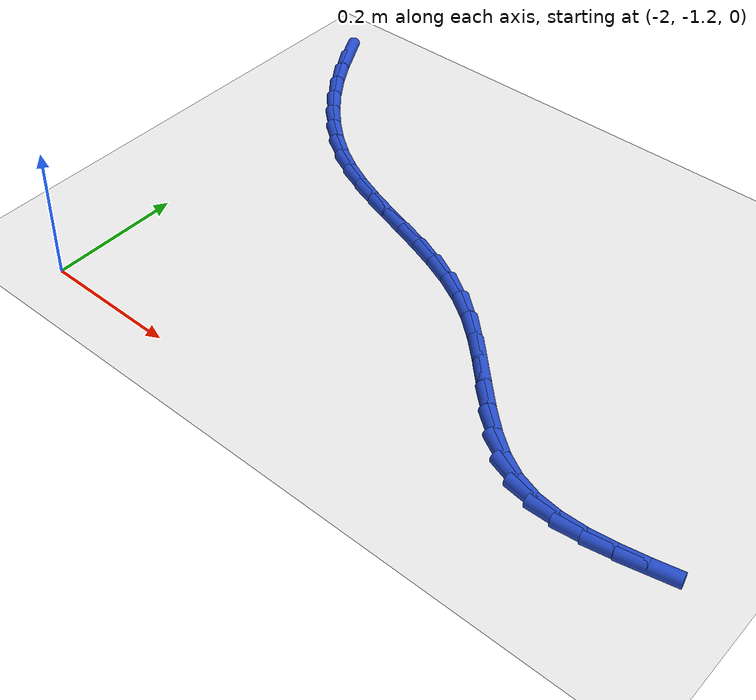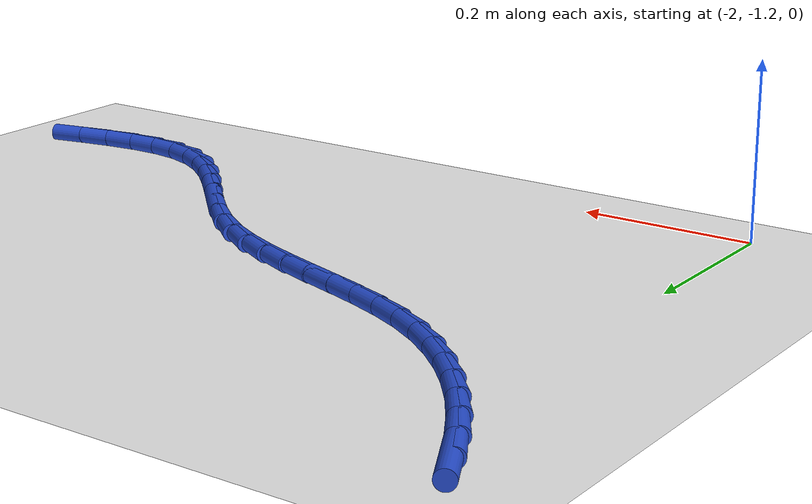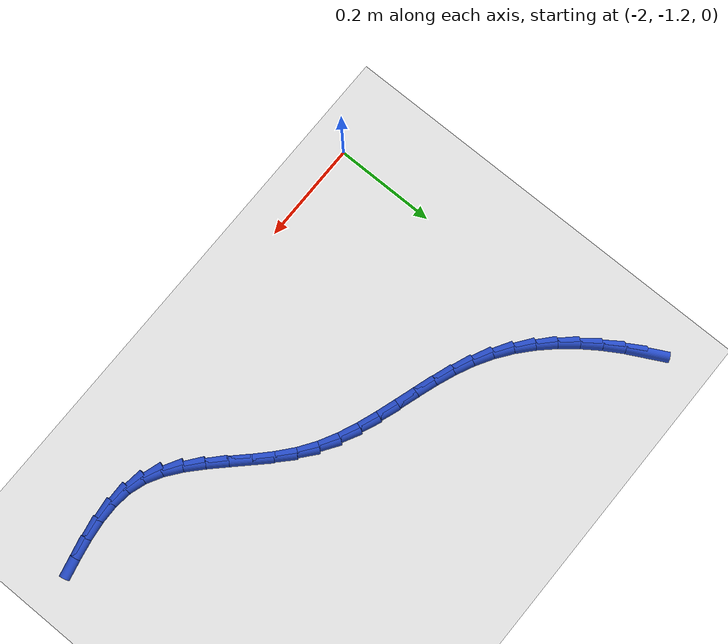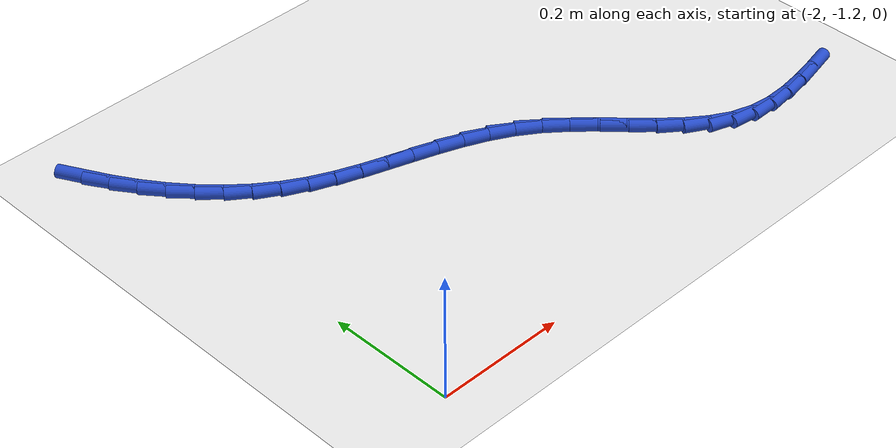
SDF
<sdf version="1.6">
 <world name="default">
  <model name="ground_plane">
   <static>1</static>
   <link name="link">
    <collision name="collision">
     <geometry><plane><normal>0 0 1</normal><size>100 100</size></plane></geometry>
     <surface><friction><ode><mu>100</mu><mu2>50</mu2></ode></friction></surface>
    </collision>
    <visual name="visual">
     <cast_shadows>0</cast_shadows>
     <geometry><plane><normal>0 0 1</normal><size>100 100</size></plane></geometry>
     <material>
      <script><uri>file://media/materials/scripts/gazebo.material</uri><name>Gazebo/WhiteGlow</name></script>
     </material>
    </visual>
   </link>
  </model>
  <model name="line">
   <link name="link_105">
    <pose>-2.055989640583898 -0.5347033518898457 0.01 0 1.57 -1.0903478461457041</pose>
    <collision name="collision">
     <geometry><cylinder><radius>0.01</radius><length>0.08</length></cylinder></geometry>
    </collision>
    <visual name="visual">
     <material>
      <script><name>Gazebo/Blue</name><uri>file://media/materials/scripts/gazebo.material</uri></script>
     </material>
     <geometry><cylinder><radius>0.01</radius><length>0.08</length></cylinder></geometry>
    </visual>
   </link>
   <link name="link_106">
    <pose>-2.036873195884393 -0.571382440824864 0.01 0 1.57 -1.0270769623736873</pose>
    <collision name="collision">
     <geometry><cylinder><radius>0.01</radius><length>0.08</length></cylinder></geometry>
    </collision>
    <visual name="visual">
     <material>
      <script><name>Gazebo/Blue</name><uri>file://media/materials/scripts/gazebo.material</uri></script>
     </material>
     <geometry><cylinder><radius>0.01</radius><length>0.08</length></cylinder></geometry>
    </visual>
   </link>
   <link name="link_107">
    <pose>-2.0156042914344954 -0.6065669227711968 0.01 0 1.57 -0.9596778812503945</pose>
    <collision name="collision">
     <geometry><cylinder><radius>0.01</radius><length>0.08</length></cylinder></geometry>
    </collision>
    <visual name="visual">
     <material>
      <script><name>Gazebo/Blue</name><uri>file://media/materials/scripts/gazebo.material</uri></script>
     </material>
     <geometry><cylinder><radius>0.01</radius><length>0.08</length></cylinder></geometry>
    </visual>
   </link>
   <link name="link_108">
    <pose>-1.99221699327265 -0.6399494524788473 0.01 0 1.57 -0.8872843532348005</pose>
    <collision name="collision">
     <geometry><cylinder><radius>0.01</radius><length>0.08</length></cylinder></geometry>
    </collision>
    <visual name="visual">
     <material>
      <script><name>Gazebo/Blue</name><uri>file://media/materials/scripts/gazebo.material</uri></script>
     </material>
     <geometry><cylinder><radius>0.01</radius><length>0.08</length></cylinder></geometry>
    </visual>
   </link>
   <link name="link_109">
    <pose>-1.9667453674373025 -0.6712226846978193 0.01 0 1.57 -0.8090677057190616</pose>
    <collision name="collision">
     <geometry><cylinder><radius>0.01</radius><length>0.08</length></cylinder></geometry>
    </collision>
    <visual name="visual">
     <material>
      <script><name>Gazebo/Blue</name><uri>file://media/materials/scripts/gazebo.material</uri></script>
     </material>
     <geometry><cylinder><radius>0.01</radius><length>0.08</length></cylinder></geometry>
    </visual>
   </link>
   <link name="link_110">
    <pose>-1.9392234799668995 -0.7000792741781148 0.01 0 1.57 -0.7243023938419302</pose>
    <collision name="collision">
     <geometry><cylinder><radius>0.01</radius><length>0.08</length></cylinder></geometry>
    </collision>
    <visual name="visual">
     <material>
      <script><name>Gazebo/Blue</name><uri>file://media/materials/scripts/gazebo.material</uri></script>
     </material>
     <geometry><cylinder><radius>0.01</radius><length>0.08</length></cylinder></geometry>
    </visual>
   </link>
   <link name="link_111">
    <pose>-1.9096853968998857 -0.7262118756697372 0.01 0 1.57 -0.6324691400189093</pose>
    <collision name="collision">
     <geometry><cylinder><radius>0.01</radius><length>0.08</length></cylinder></geometry>
    </collision>
    <visual name="visual">
     <material>
      <script><name>Gazebo/Blue</name><uri>file://media/materials/scripts/gazebo.material</uri></script>
     </material>
     <geometry><cylinder><radius>0.01</radius><length>0.08</length></cylinder></geometry>
    </visual>
   </link>
   <link name="link_112">
    <pose>-1.8781651842747078 -0.7493131439226903 0.01 0 1.57 -0.5335536478623998</pose>
    <collision name="collision">
     <geometry><cylinder><radius>0.01</radius><length>0.08</length></cylinder></geometry>
    </collision>
    <visual name="visual">
     <material>
      <script><name>Gazebo/Blue</name><uri>file://media/materials/scripts/gazebo.material</uri></script>
     </material>
     <geometry><cylinder><radius>0.01</radius><length>0.08</length></cylinder></geometry>
    </visual>
   </link>
   <link name="link_113">
    <pose>-1.8446989627490256 -0.7690816611771227 0.01 0 1.57 -0.4394246609126795</pose>
    <collision name="collision">
     <geometry><cylinder><radius>0.01</radius><length>0.08</length></cylinder></geometry>
    </collision>
    <visual name="visual">
     <material>
      <script><name>Gazebo/Blue</name><uri>file://media/materials/scripts/gazebo.material</uri></script>
     </material>
     <geometry><cylinder><radius>0.01</radius><length>0.08</length></cylinder></geometry>
    </visual>
   </link>
   <link name="link_114">
    <pose>-1.8094704453236496 -0.785641807384706 0.01 0 1.57 -0.3699642390373073</pose>
    <collision name="collision">
     <geometry><cylinder><radius>0.01</radius><length>0.08</length></cylinder></geometry>
    </collision>
    <visual name="visual">
     <material>
      <script><name>Gazebo/Blue</name><uri>file://media/materials/scripts/gazebo.material</uri></script>
     </material>
     <geometry><cylinder><radius>0.01</radius><length>0.08</length></cylinder></geometry>
    </visual>
   </link>
   <link name="link_115">
    <pose>-1.7729073115763025 -0.79982179582559 0.01 0 1.57 -0.3268279391194134</pose>
    <collision name="collision">
     <geometry><cylinder><radius>0.01</radius><length>0.08</length></cylinder></geometry>
    </collision>
    <visual name="visual">
     <material>
      <script><name>Gazebo/Blue</name><uri>file://media/materials/scripts/gazebo.material</uri></script>
     </material>
     <geometry><cylinder><radius>0.01</radius><length>0.08</length></cylinder></geometry>
    </visual>
   </link>
   <link name="link_116">
    <pose>-1.7354601101613734 -0.8125158161056657 0.01 0 1.57 -0.30923379011010144</pose>
    <collision name="collision">
     <geometry><cylinder><radius>0.01</radius><length>0.08</length></cylinder></geometry>
    </collision>
    <visual name="visual">
     <material>
      <script><name>Gazebo/Blue</name><uri>file://media/materials/scripts/gazebo.material</uri></script>
     </material>
     <geometry><cylinder><radius>0.01</radius><length>0.08</length></cylinder></geometry>
    </visual>
   </link>
   <link name="link_117">
    <pose>-1.6975793897332512 -0.824618057830827 0.01 0 1.57 -0.3165938183360935</pose>
    <collision name="collision">
     <geometry><cylinder><radius>0.01</radius><length>0.08</length></cylinder></geometry>
    </collision>
    <visual name="visual">
     <material>
      <script><name>Gazebo/Blue</name><uri>file://media/materials/scripts/gazebo.material</uri></script>
     </material>
     <geometry><cylinder><radius>0.01</radius><length>0.08</length></cylinder></geometry>
    </visual>
   </link>
   <link name="link_118">
    <pose>-1.6597156989463238 -0.8370227106069656 0.01 0 1.57 -0.3488339923675682</pose>
    <collision name="collision">
     <geometry><cylinder><radius>0.01</radius><length>0.08</length></cylinder></geometry>
    </collision>
    <visual name="visual">
     <material>
      <script><name>Gazebo/Blue</name><uri>file://media/materials/scripts/gazebo.material</uri></script>
     </material>
     <geometry><cylinder><radius>0.01</radius><length>0.08</length></cylinder></geometry>
    </visual>
   </link>
   <link name="link_119">
    <pose>-1.6223195864549798 -0.8506239640399738 0.01 0 1.57 -0.40624866162453827</pose>
    <collision name="collision">
     <geometry><cylinder><radius>0.01</radius><length>0.08</length></cylinder></geometry>
    </collision>
    <visual name="visual">
     <material>
      <script><name>Gazebo/Blue</name><uri>file://media/materials/scripts/gazebo.material</uri></script>
     </material>
     <geometry><cylinder><radius>0.01</radius><length>0.08</length></cylinder></geometry>
    </visual>
   </link>
   <link name="link_120">
    <pose>-1.5858416009136078 -0.8663160077357447 0.01 0 1.57 -0.48889361861522007</pose>
    <collision name="collision">
     <geometry><cylinder><radius>0.01</radius><length>0.08</length></cylinder></geometry>
    </collision>
    <visual name="visual">
     <material>
      <script><name>Gazebo/Blue</name><uri>file://media/materials/scripts/gazebo.material</uri></script>
     </material>
     <geometry><cylinder><radius>0.01</radius><length>0.08</length></cylinder></geometry>
    </visual>
   </link>
   <link name="link_121">
    <pose>-1.5507322909765968 -0.8849930313001702 0.01 0 1.57 -0.5952221429265512</pose>
    <collision name="collision">
     <geometry><cylinder><radius>0.01</radius><length>0.08</length></cylinder></geometry>
    </collision>
    <visual name="visual">
     <material>
      <script><name>Gazebo/Blue</name><uri>file://media/materials/scripts/gazebo.material</uri></script>
     </material>
     <geometry><cylinder><radius>0.01</radius><length>0.08</length></cylinder></geometry>
    </visual>
   </link>
   <link name="link_122">
    <pose>-1.5174377556744423 -0.9075382762945969 0.01 0 1.57 -0.700118639893401</pose>
    <collision name="collision">
     <geometry><cylinder><radius>0.01</radius><length>0.08</length></cylinder></geometry>
    </collision>
    <visual name="visual">
     <material>
      <script><name>Gazebo/Blue</name><uri>file://media/materials/scripts/gazebo.material</uri></script>
     </material>
     <geometry><cylinder><radius>0.01</radius><length>0.08</length></cylinder></geometry>
    </visual>
   </link>
   <link name="link_123">
    <pose>-1.4860555793864745 -0.9339774839573551 0.01 0 1.57 -0.767291678769534</pose>
    <collision name="collision">
     <geometry><cylinder><radius>0.01</radius><length>0.08</length></cylinder></geometry>
    </collision>
    <visual name="visual">
     <material>
      <script><name>Gazebo/Blue</name><uri>file://media/materials/scripts/gazebo.material</uri></script>
     </material>
     <geometry><cylinder><radius>0.01</radius><length>0.08</length></cylinder></geometry>
    </visual>
   </link>
   <link name="link_124">
    <pose>-1.4560901765066385 -0.9628769347770681 0.01 0 1.57 -0.7969773081281406</pose>
    <collision name="collision">
     <geometry><cylinder><radius>0.01</radius><length>0.08</length></cylinder></geometry>
    </collision>
    <visual name="visual">
     <material>
      <script><name>Gazebo/Blue</name><uri>file://media/materials/scripts/gazebo.material</uri></script>
     </material>
     <geometry><cylinder><radius>0.01</radius><length>0.08</length></cylinder></geometry>
    </visual>
   </link>
   <link name="link_125">
    <pose>-1.4269881996445133 -0.9926607896827203 0.01 0 1.57 -0.7905898801738367</pose>
    <collision name="collision">
     <geometry><cylinder><radius>0.01</radius><length>0.08</length></cylinder></geometry>
    </collision>
    <visual name="visual">
     <material>
      <script><name>Gazebo/Blue</name><uri>file://media/materials/scripts/gazebo.material</uri></script>
     </material>
     <geometry><cylinder><radius>0.01</radius><length>0.08</length></cylinder></geometry>
    </visual>
   </link>
   <link name="link_126">
    <pose>-1.3981963014096783 -1.0217532096032969 0.01 0 1.57 -0.7458554358853111</pose>
    <collision name="collision">
     <geometry><cylinder><radius>0.01</radius><length>0.08</length></cylinder></geometry>
    </collision>
    <visual name="visual">
     <material>
      <script><name>Gazebo/Blue</name><uri>file://media/materials/scripts/gazebo.material</uri></script>
     </material>
     <geometry><cylinder><radius>0.01</radius><length>0.08</length></cylinder></geometry>
    </visual>
   </link>
   <link name="link_127">
    <pose>-1.3691611344117138 -1.0485783554677812 0.01 0 1.57 -0.6564219372104343</pose>
    <collision name="collision">
     <geometry><cylinder><radius>0.01</radius><length>0.08</length></cylinder></geometry>
    </collision>
    <visual name="visual">
     <material>
      <script><name>Gazebo/Blue</name><uri>file://media/materials/scripts/gazebo.material</uri></script>
     </material>
     <geometry><cylinder><radius>0.01</radius><length>0.08</length></cylinder></geometry>
    </visual>
   </link>
   <link name="link_128">
    <pose>-1.3393293512601987 -1.0715603882051583 0.01 0 1.57 -0.5129580785174347</pose>
    <collision name="collision">
     <geometry><cylinder><radius>0.01</radius><length>0.08</length></cylinder></geometry>
    </collision>
    <visual name="visual">
     <material>
      <script><name>Gazebo/Blue</name><uri>file://media/materials/scripts/gazebo.material</uri></script>
     </material>
     <geometry><cylinder><radius>0.01</radius><length>0.08</length></cylinder></geometry>
    </visual>
   </link>
   <link name="link_129">
    <pose>-1.3081476045647131 -1.0891234687444131 0.01 0 1.57 -0.3165028999214422</pose>
    <collision name="collision">
     <geometry><cylinder><radius>0.01</radius><length>0.08</length></cylinder></geometry>
    </collision>
    <visual name="visual">
     <material>
      <script><name>Gazebo/Blue</name><uri>file://media/materials/scripts/gazebo.material</uri></script>
     </material>
     <geometry><cylinder><radius>0.01</radius><length>0.08</length></cylinder></geometry>
    </visual>
   </link>
   <link name="link_130">
    <pose>-1.275129006999591 -1.0999374799126558 0.01 0 1.57 -0.1278962044851762</pose>
    <collision name="collision">
     <geometry><cylinder><radius>0.01</radius><length>0.08</length></cylinder></geometry>
    </collision>
    <visual name="visual">
     <material>
      <script><name>Gazebo/Blue</name><uri>file://media/materials/scripts/gazebo.material</uri></script>
     </material>
     <geometry><cylinder><radius>0.01</radius><length>0.08</length></cylinder></geometry>
    </visual>
   </link>
   <link name="link_131">
    <pose>-1.2402597995534033 -1.1044215954511456 0.01 0 1.57 0.01828364802186769</pose>
    <collision name="collision">
     <geometry><cylinder><radius>0.01</radius><length>0.08</length></cylinder></geometry>
    </collision>
    <visual name="visual">
     <material>
      <script><name>Gazebo/Blue</name><uri>file://media/materials/scripts/gazebo.material</uri></script>
     </material>
     <geometry><cylinder><radius>0.01</radius><length>0.08</length></cylinder></geometry>
    </visual>
   </link>
   <link name="link_132">
    <pose>-1.2037314168976616 -1.1037536489285227 0.01 0 1.57 0.12149555044751666</pose>
    <collision name="collision">
     <geometry><cylinder><radius>0.01</radius><length>0.08</length></cylinder></geometry>
    </collision>
    <visual name="visual">
     <material>
      <script><name>Gazebo/Blue</name><uri>file://media/materials/scripts/gazebo.material</uri></script>
     </material>
     <geometry><cylinder><radius>0.01</radius><length>0.08</length></cylinder></geometry>
    </visual>
   </link>
   <link name="link_133">
    <pose>-1.1657361232827292 -1.0991145411040997 0.01 0 1.57 0.18697730798959042</pose>
    <collision name="collision">
     <geometry><cylinder><radius>0.01</radius><length>0.08</length></cylinder></geometry>
    </collision>
    <visual name="visual">
     <material>
      <script><name>Gazebo/Blue</name><uri>file://media/materials/scripts/gazebo.material</uri></script>
     </material>
     <geometry><cylinder><radius>0.01</radius><length>0.08</length></cylinder></geometry>
    </visual>
   </link>
   <link name="link_134">
    <pose>-1.126466182958971 -1.0916851727371892 0.01 0 1.57 0.22035788998325678</pose>
    <collision name="collision">
     <geometry><cylinder><radius>0.01</radius><length>0.08</length></cylinder></geometry>
    </collision>
    <visual name="visual">
     <material>
      <script><name>Gazebo/Blue</name><uri>file://media/materials/scripts/gazebo.material</uri></script>
     </material>
     <geometry><cylinder><radius>0.01</radius><length>0.08</length></cylinder></geometry>
    </visual>
   </link>
  </model>
 </world>
</sdf>
